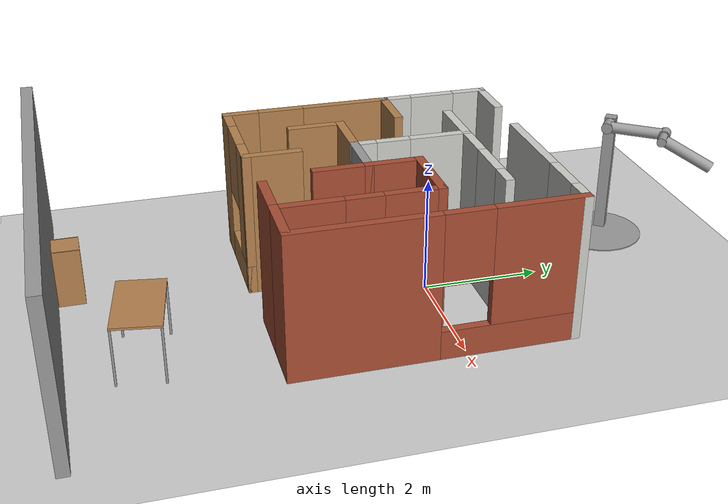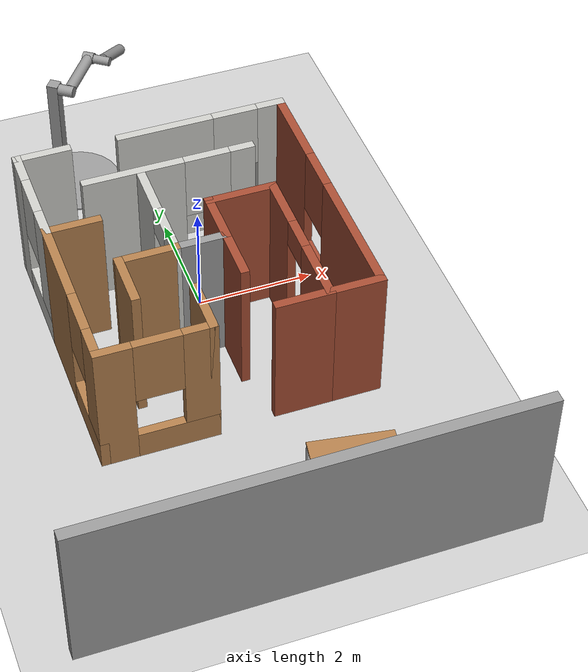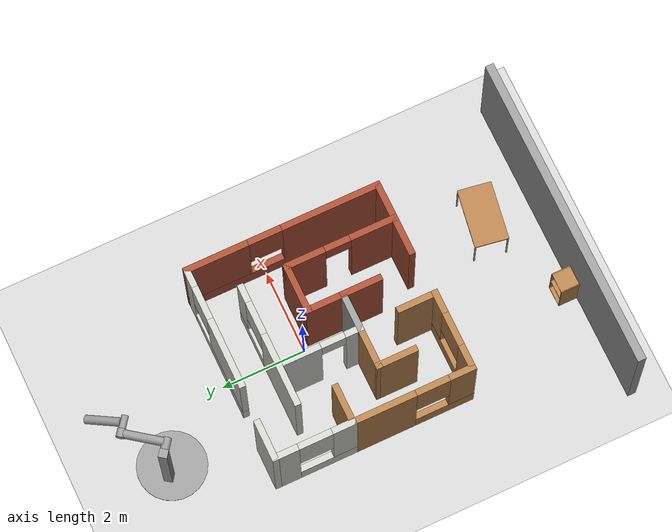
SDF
<sdf version="1.6">
 <world name="default">
  <light name="sun" type="directional">
   <pose>0 0 10 0 -0 0</pose>
   <diffuse>0.8 0.8 0.8 1</diffuse>
   <specular>0.1 0.1 0.1 1</specular>
   <attenuation>
    <range>1000</range>
    <constant>0.9</constant>
    <linear>0.01</linear>
    <quadratic>0.001</quadratic>
   </attenuation>
   <direction>-0.5 0.5 -1</direction>
  </light>
  <model name="ground_plane">
   <static>1</static>
   <link name="link">
    <collision name="collision">
     <geometry><plane><normal>0 0 1</normal><size>100 100</size></plane></geometry>
     <surface><friction><ode><mu>100</mu><mu2>50</mu2></ode></friction></surface>
    </collision>
    <visual name="visual">
     <cast_shadows>0</cast_shadows>
     <geometry><plane><normal>0 0 1</normal><size>100 100</size></plane></geometry>
     <material>
      <script><uri>file://media/materials/scripts/gazebo.material</uri><name>Gazebo/Grey</name></script>
     </material>
    </visual>
   </link>
  </model>
  <gravity>0 0 -9.8</gravity>
  <magnetic_field>6e-06 2.3e-05 -4.2e-05</magnetic_field>
  <atmosphere type="adiabatic"/>
  <physics name="default_physics" default="0" type="ode">
   <max_step_size>0.001</max_step_size>
   <real_time_factor>1</real_time_factor>
   <real_time_update_rate>1000</real_time_update_rate>
  </physics>
  <scene><ambient>0.4 0.4 0.4 1</ambient><background>0.7 0.7 0.7 1</background><shadows>1</shadows></scene>
  <spherical_coordinates>
   <surface_model>EARTH_WGS84</surface_model>
   <latitude_deg>0</latitude_deg>
   <longitude_deg>0</longitude_deg>
   <elevation>0</elevation>
   <heading_deg>0</heading_deg>
  </spherical_coordinates>
  <model name="small_maze">
   <pose>-0.224394 -0.518932 0 0 -0 0</pose>
   <link name="Wall_0">
    <pose>0.021892 1.40552 0 0 -0 0</pose>
    <visual name="Wall_0_Visual_0">
     <pose>-0.618745 0 1.25 0 -0 0</pose>
     <geometry><box><size>1.76251 0.15 2.5</size></box></geometry>
     <material>
      <script><uri>file://media/materials/scripts/gazebo.material</uri><name>Gazebo/CeilingTiled</name></script>
      <ambient>1 1 1 1</ambient>
     </material>
    </visual>
    <collision name="Wall_0_Collision_0">
     <geometry><box><size>1.76251 0.15 2.5</size></box></geometry>
     <pose>-0.618745 0 1.25 0 -0 0</pose>
    </collision>
    <visual name="Wall_0_Visual_1">
     <pose>0.881255 0 0.25 0 -0 0</pose>
     <geometry><box><size>1.23749 0.15 0.5</size></box></geometry>
     <material>
      <script><uri>file://media/materials/scripts/gazebo.material</uri><name>Gazebo/CeilingTiled</name></script>
      <ambient>1 1 1 1</ambient>
     </material>
    </visual>
    <collision name="Wall_0_Collision_1">
     <geometry><box><size>1.23749 0.15 0.5</size></box></geometry>
     <pose>0.881255 0 0.25 0 -0 0</pose>
    </collision>
    <visual name="Wall_0_Visual_2">
     <pose>1.28126 0 1.5 0 -0 0</pose>
     <geometry><box><size>0.43749 0.15 2</size></box></geometry>
     <material>
      <script><uri>file://media/materials/scripts/gazebo.material</uri><name>Gazebo/CeilingTiled</name></script>
      <ambient>1 1 1 1</ambient>
     </material>
    </visual>
    <collision name="Wall_0_Collision_2">
     <geometry><box><size>0.43749 0.15 2</size></box></geometry>
     <pose>1.28126 0 1.5 0 -0 0</pose>
    </collision>
    <visual name="Wall_0_Visual_3">
     <pose>0.66251 0 1.9 0 -0 0</pose>
     <geometry><box><size>0.8 0.15 1.2</size></box></geometry>
     <material>
      <script><uri>file://media/materials/scripts/gazebo.material</uri><name>Gazebo/CeilingTiled</name></script>
      <ambient>1 1 1 1</ambient>
     </material>
    </visual>
    <collision name="Wall_0_Collision_3">
     <geometry><box><size>0.8 0.15 1.2</size></box></geometry>
     <pose>0.66251 0 1.9 0 -0 0</pose>
    </collision>
   </link>
   <link name="Wall_11">
    <collision name="Wall_11_Collision">
     <geometry><box><size>1 0.15 2.5</size></box></geometry>
     <pose>0 0 1.25 0 -0 0</pose>
    </collision>
    <visual name="Wall_11_Visual">
     <pose>0 0 1.25 0 -0 0</pose>
     <geometry><box><size>1 0.15 2.5</size></box></geometry>
     <material>
      <script><uri>file://media/materials/scripts/gazebo.material</uri><name>Gazebo/Wood</name></script>
      <ambient>1 1 1 1</ambient>
     </material>
    </visual>
    <pose>-1.41526 -0.962998 0 0 -0 1.5708</pose>
   </link>
   <link name="Wall_12">
    <collision name="Wall_12_Collision">
     <geometry><box><size>1.08159 0.15 2.5</size></box></geometry>
     <pose>0 0 1.25 0 -0 0</pose>
    </collision>
    <visual name="Wall_12_Visual">
     <pose>0 0 1.25 0 -0 0</pose>
     <geometry><box><size>1.08159 0.15 2.5</size></box></geometry>
     <material>
      <script><uri>file://media/materials/scripts/gazebo.material</uri><name>Gazebo/Wood</name></script>
      <ambient>1 1 1 1</ambient>
     </material>
    </visual>
    <pose>-0.949514 -0.536146 0 0 -0 0.003974</pose>
   </link>
   <link name="Wall_14">
    <pose>-0.480818 0.434933 0 0 0 -1.57384</pose>
    <visual name="Wall_14_Visual_0">
     <pose>-0.509468 0 1.25 0 -0 0</pose>
     <geometry><box><size>1.06953 0.15 2.5</size></box></geometry>
     <material>
      <script><uri>file://media/materials/scripts/gazebo.material</uri><name>Gazebo/CeilingTiled</name></script>
      <ambient>1 1 1 1</ambient>
     </material>
    </visual>
    <collision name="Wall_14_Collision_0">
     <geometry><box><size>1.06953 0.15 2.5</size></box></geometry>
     <pose>-0.509468 0 1.25 0 -0 0</pose>
    </collision>
    <visual name="Wall_14_Visual_1">
     <pose>0.823836 0 1.25 0 -0 0</pose>
     <geometry><box><size>0.440796 0.15 2.5</size></box></geometry>
     <material>
      <script><uri>file://media/materials/scripts/gazebo.material</uri><name>Gazebo/CeilingTiled</name></script>
      <ambient>1 1 1 1</ambient>
     </material>
    </visual>
    <collision name="Wall_14_Collision_1">
     <geometry><box><size>0.440796 0.15 2.5</size></box></geometry>
     <pose>0.823836 0 1.25 0 -0 0</pose>
    </collision>
    <visual name="Wall_14_Visual_2">
     <pose>0.314367 0 2.25 0 -0 0</pose>
     <geometry><box><size>0.578141 0.15 0.5</size></box></geometry>
     <material>
      <script><uri>file://media/materials/scripts/gazebo.material</uri><name>Gazebo/CeilingTiled</name></script>
      <ambient>1 1 1 1</ambient>
     </material>
    </visual>
    <collision name="Wall_14_Collision_2">
     <geometry><box><size>0.578141 0.15 0.5</size></box></geometry>
     <pose>0.314367 0 2.25 0 -0 0</pose>
    </collision>
   </link>
   <link name="Wall_15">
    <collision name="Wall_15_Collision">
     <geometry><box><size>1 0.15 2.5</size></box></geometry>
     <pose>0 0 1.25 0 -0 0</pose>
    </collision>
    <visual name="Wall_15_Visual">
     <pose>0 0 1.25 0 -0 0</pose>
     <geometry><box><size>1 0.15 2.5</size></box></geometry>
     <material>
      <script><uri>file://media/materials/scripts/gazebo.material</uri><name>Gazebo/Grey</name></script>
      <ambient>1 1 1 1</ambient>
     </material>
    </visual>
    <pose>-0.058765 -0.534295 0 0 -0 0</pose>
   </link>
   <link name="Wall_16">
    <collision name="Wall_16_Collision">
     <geometry><box><size>1 0.15 2.5</size></box></geometry>
     <pose>0 0 1.25 0 -0 0</pose>
    </collision>
    <visual name="Wall_16_Visual">
     <pose>0 0 1.25 0 -0 0</pose>
     <geometry><box><size>1 0.15 2.5</size></box></geometry>
     <material>
      <script><uri>file://media/materials/scripts/gazebo.material</uri><name>Gazebo/Bricks</name></script>
      <ambient>1 1 1 1</ambient>
     </material>
    </visual>
    <pose>0.366235 -0.959295 0 0 0 -1.5708</pose>
   </link>
   <link name="Wall_18">
    <collision name="Wall_18_Collision">
     <geometry><box><size>1 0.15 2.5</size></box></geometry>
     <pose>0 0 1.25 0 -0 0</pose>
    </collision>
    <visual name="Wall_18_Visual">
     <pose>0 0 1.25 0 -0 0</pose>
     <geometry><box><size>1 0.15 2.5</size></box></geometry>
     <material>
      <script><uri>file://media/materials/scripts/gazebo.material</uri><name>Gazebo/Bricks</name></script>
      <ambient>1 1 1 1</ambient>
     </material>
    </visual>
    <pose>0.366235 -0.109295 0 0 -0 1.5708</pose>
   </link>
   <link name="Wall_19">
    <collision name="Wall_19_Collision">
     <geometry><box><size>1.25 0.15 2.5</size></box></geometry>
     <pose>0 0 1.25 0 -0 0</pose>
    </collision>
    <visual name="Wall_19_Visual">
     <pose>0 0 1.25 0 -0 0</pose>
     <geometry><box><size>1.25 0.15 2.5</size></box></geometry>
     <material>
      <script><uri>file://media/materials/scripts/gazebo.material</uri><name>Gazebo/Bricks</name></script>
      <ambient>1 1 1 1</ambient>
     </material>
    </visual>
    <pose>0.916235 0.315705 0 0 -0 0</pose>
   </link>
   <link name="Wall_2">
    <collision name="Wall_2_Collision">
     <geometry><box><size>1 0.15 2.5</size></box></geometry>
     <pose>0 0 1.25 0 -0 0</pose>
    </collision>
    <visual name="Wall_2_Visual">
     <pose>0 0 1.25 0 -0 0</pose>
     <geometry><box><size>1 0.15 2.5</size></box></geometry>
     <material>
      <script><uri>file://media/materials/scripts/gazebo.material</uri><name>Gazebo/CeilingTiled</name></script>
      <ambient>1 1 1 1</ambient>
     </material>
    </visual>
    <pose>-1.89123 2.35 0 0 -0 3.14159</pose>
   </link>
   <link name="Wall_20">
    <pose>1.46623 -0.984295 0 0 0 -1.5708</pose>
    <visual name="Wall_20_Visual_0">
     <pose>-0.881212 0 1.25 0 -0 0</pose>
     <geometry><box><size>0.987576 0.15 2.5</size></box></geometry>
     <material>
      <script><uri>file://media/materials/scripts/gazebo.material</uri><name>Gazebo/Bricks</name></script>
      <ambient>1 1 1 1</ambient>
     </material>
    </visual>
    <collision name="Wall_20_Collision_0">
     <geometry><box><size>0.987576 0.15 2.5</size></box></geometry>
     <pose>-0.881212 0 1.25 0 -0 0</pose>
    </collision>
    <visual name="Wall_20_Visual_1">
     <pose>0.800038 0 1.25 0 -0 0</pose>
     <geometry><box><size>1.14992 0.15 2.5</size></box></geometry>
     <material>
      <script><uri>file://media/materials/scripts/gazebo.material</uri><name>Gazebo/Bricks</name></script>
      <ambient>1 1 1 1</ambient>
     </material>
    </visual>
    <collision name="Wall_20_Collision_1">
     <geometry><box><size>1.14992 0.15 2.5</size></box></geometry>
     <pose>0.800038 0 1.25 0 -0 0</pose>
    </collision>
    <visual name="Wall_20_Visual_2">
     <pose>-0.081174 0 2.25 0 -0 0</pose>
     <geometry><box><size>0.6125 0.15 0.5</size></box></geometry>
     <material>
      <script><uri>file://media/materials/scripts/gazebo.material</uri><name>Gazebo/Bricks</name></script>
      <ambient>1 1 1 1</ambient>
     </material>
    </visual>
    <collision name="Wall_20_Collision_2">
     <geometry><box><size>0.6125 0.15 0.5</size></box></geometry>
     <pose>-0.081174 0 2.25 0 -0 0</pose>
    </collision>
   </link>
   <link name="Wall_22">
    <collision name="Wall_22_Collision">
     <geometry><box><size>1 0.15 2.5</size></box></geometry>
     <pose>0 0 1.25 0 -0 0</pose>
    </collision>
    <visual name="Wall_22_Visual">
     <pose>0 0 1.25 0 -0 0</pose>
     <geometry><box><size>1 0.15 2.5</size></box></geometry>
     <material>
      <script><uri>file://media/materials/scripts/gazebo.material</uri><name>Gazebo/Bricks</name></script>
      <ambient>1 1 1 1</ambient>
     </material>
    </visual>
    <pose>1.04123 -2.2843 0 0 -0 3.14159</pose>
   </link>
   <link name="Wall_24">
    <collision name="Wall_24_Collision">
     <geometry><box><size>1 0.15 2.5</size></box></geometry>
     <pose>0 0 1.25 0 -0 0</pose>
    </collision>
    <visual name="Wall_24_Visual">
     <pose>0 0 1.25 0 -0 0</pose>
     <geometry><box><size>1 0.15 2.5</size></box></geometry>
     <material>
      <script><uri>file://media/materials/scripts/gazebo.material</uri><name>Gazebo/Bricks</name></script>
      <ambient>1 1 1 1</ambient>
     </material>
    </visual>
    <pose>1.89123 -2.2843 0 0 -0 0</pose>
   </link>
   <link name="Wall_25">
    <pose>2.31623 0.015705 0 0 -0 1.5708</pose>
    <visual name="Wall_25_Visual_0">
     <pose>-1.16841 0 1.25 0 -0 0</pose>
     <geometry><box><size>2.41317 0.15 2.5</size></box></geometry>
     <material>
      <script><uri>file://media/materials/scripts/gazebo.material</uri><name>Gazebo/Bricks</name></script>
      <ambient>1 1 1 1</ambient>
     </material>
    </visual>
    <collision name="Wall_25_Collision_0">
     <geometry><box><size>2.41317 0.15 2.5</size></box></geometry>
     <pose>-1.16841 0 1.25 0 -0 0</pose>
    </collision>
    <visual name="Wall_25_Visual_1">
     <pose>1.20659 0 0.25 0 -0 0</pose>
     <geometry><box><size>2.33683 0.15 0.5</size></box></geometry>
     <material>
      <script><uri>file://media/materials/scripts/gazebo.material</uri><name>Gazebo/Bricks</name></script>
      <ambient>1 1 1 1</ambient>
     </material>
    </visual>
    <collision name="Wall_25_Collision_1">
     <geometry><box><size>2.33683 0.15 0.5</size></box></geometry>
     <pose>1.20659 0 0.25 0 -0 0</pose>
    </collision>
    <visual name="Wall_25_Visual_2">
     <pose>1.60659 0 1.5 0 -0 0</pose>
     <geometry><box><size>1.53683 0.15 2</size></box></geometry>
     <material>
      <script><uri>file://media/materials/scripts/gazebo.material</uri><name>Gazebo/Bricks</name></script>
      <ambient>1 1 1 1</ambient>
     </material>
    </visual>
    <collision name="Wall_25_Collision_2">
     <geometry><box><size>1.53683 0.15 2</size></box></geometry>
     <pose>1.60659 0 1.5 0 -0 0</pose>
    </collision>
    <visual name="Wall_25_Visual_3">
     <pose>0.438174 0 1.9 0 -0 0</pose>
     <geometry><box><size>0.8 0.15 1.2</size></box></geometry>
     <material>
      <script><uri>file://media/materials/scripts/gazebo.material</uri><name>Gazebo/Bricks</name></script>
      <ambient>1 1 1 1</ambient>
     </material>
    </visual>
    <collision name="Wall_25_Collision_3">
     <geometry><box><size>0.8 0.15 1.2</size></box></geometry>
     <pose>0.438174 0 1.9 0 -0 0</pose>
    </collision>
   </link>
   <link name="Wall_26">
    <pose>0.891235 2.3157 0 0 -0 3.14159</pose>
    <visual name="Wall_26_Visual_0">
     <pose>-1.24908 0 1.25 0 -0 0</pose>
     <geometry><box><size>0.501833 0.15 2.5</size></box></geometry>
     <material>
      <script><uri>file://media/materials/scripts/gazebo.material</uri><name>Gazebo/CeilingTiled</name></script>
      <ambient>1 1 1 1</ambient>
     </material>
    </visual>
    <collision name="Wall_26_Collision_0">
     <geometry><box><size>0.501833 0.15 2.5</size></box></geometry>
     <pose>-1.24908 0 1.25 0 -0 0</pose>
    </collision>
    <visual name="Wall_26_Visual_1">
     <pose>0.250916 0 0.25 0 -0 0</pose>
     <geometry><box><size>2.49817 0.15 0.5</size></box></geometry>
     <material>
      <script><uri>file://media/materials/scripts/gazebo.material</uri><name>Gazebo/CeilingTiled</name></script>
      <ambient>1 1 1 1</ambient>
     </material>
    </visual>
    <collision name="Wall_26_Collision_1">
     <geometry><box><size>2.49817 0.15 0.5</size></box></geometry>
     <pose>0.250916 0 0.25 0 -0 0</pose>
    </collision>
    <visual name="Wall_26_Visual_2">
     <pose>0.650916 0 1.5 0 -0 0</pose>
     <geometry><box><size>1.69817 0.15 2</size></box></geometry>
     <material>
      <script><uri>file://media/materials/scripts/gazebo.material</uri><name>Gazebo/CeilingTiled</name></script>
      <ambient>1 1 1 1</ambient>
     </material>
    </visual>
    <collision name="Wall_26_Collision_2">
     <geometry><box><size>1.69817 0.15 2</size></box></geometry>
     <pose>0.650916 0 1.5 0 -0 0</pose>
    </collision>
    <visual name="Wall_26_Visual_3">
     <pose>-0.598167 0 1.9 0 -0 0</pose>
     <geometry><box><size>0.8 0.15 1.2</size></box></geometry>
     <material>
      <script><uri>file://media/materials/scripts/gazebo.material</uri><name>Gazebo/CeilingTiled</name></script>
      <ambient>1 1 1 1</ambient>
     </material>
    </visual>
    <collision name="Wall_26_Collision_3">
     <geometry><box><size>0.8 0.15 1.2</size></box></geometry>
     <pose>-0.598167 0 1.9 0 -0 0</pose>
    </collision>
   </link>
   <link name="Wall_3">
    <pose>-2.31623 1.425 0 0 0 -1.5708</pose>
    <visual name="Wall_3_Visual_0">
     <pose>-0.685939 0 1.25 0 -0 0</pose>
     <geometry><box><size>0.628121 0.15 2.5</size></box></geometry>
     <material>
      <script><uri>file://media/materials/scripts/gazebo.material</uri><name>Gazebo/CeilingTiled</name></script>
      <ambient>1 1 1 1</ambient>
     </material>
    </visual>
    <collision name="Wall_3_Collision_0">
     <geometry><box><size>0.628121 0.15 2.5</size></box></geometry>
     <pose>-0.685939 0 1.25 0 -0 0</pose>
    </collision>
    <visual name="Wall_3_Visual_1">
     <pose>0.314061 0 0.25 0 -0 0</pose>
     <geometry><box><size>1.37188 0.15 0.5</size></box></geometry>
     <material>
      <script><uri>file://media/materials/scripts/gazebo.material</uri><name>Gazebo/CeilingTiled</name></script>
      <ambient>1 1 1 1</ambient>
     </material>
    </visual>
    <collision name="Wall_3_Collision_1">
     <geometry><box><size>1.37188 0.15 0.5</size></box></geometry>
     <pose>0.314061 0 0.25 0 -0 0</pose>
    </collision>
    <visual name="Wall_3_Visual_2">
     <pose>0.714061 0 1.5 0 -0 0</pose>
     <geometry><box><size>0.571879 0.15 2</size></box></geometry>
     <material>
      <script><uri>file://media/materials/scripts/gazebo.material</uri><name>Gazebo/CeilingTiled</name></script>
      <ambient>1 1 1 1</ambient>
     </material>
    </visual>
    <collision name="Wall_3_Collision_2">
     <geometry><box><size>0.571879 0.15 2</size></box></geometry>
     <pose>0.714061 0 1.5 0 -0 0</pose>
    </collision>
    <visual name="Wall_3_Visual_3">
     <pose>0.028121 0 1.9 0 -0 0</pose>
     <geometry><box><size>0.8 0.15 1.2</size></box></geometry>
     <material>
      <script><uri>file://media/materials/scripts/gazebo.material</uri><name>Gazebo/CeilingTiled</name></script>
      <ambient>1 1 1 1</ambient>
     </material>
    </visual>
    <collision name="Wall_3_Collision_3">
     <geometry><box><size>0.8 0.15 1.2</size></box></geometry>
     <pose>0.028121 0 1.9 0 -0 0</pose>
    </collision>
   </link>
   <link name="Wall_4">
    <collision name="Wall_4_Collision">
     <geometry><box><size>1 0.15 2.5</size></box></geometry>
     <pose>0 0 1.25 0 -0 0</pose>
    </collision>
    <visual name="Wall_4_Visual">
     <pose>0 0 1.25 0 -0 0</pose>
     <geometry><box><size>1 0.15 2.5</size></box></geometry>
     <material>
      <script><uri>file://media/materials/scripts/gazebo.material</uri><name>Gazebo/Wood</name></script>
      <ambient>1 1 1 1</ambient>
     </material>
    </visual>
    <pose>-1.89123 0.5 0 0 -0 0</pose>
   </link>
   <link name="Wall_6">
    <pose>-2.31623 -0.925 0 0 0 -1.5708</pose>
    <visual name="Wall_6_Visual_0">
     <pose>-0.713689 0 1.25 0 -0 0</pose>
     <geometry><box><size>1.57262 0.15 2.5</size></box></geometry>
     <material>
      <script><uri>file://media/materials/scripts/gazebo.material</uri><name>Gazebo/Wood</name></script>
      <ambient>1 1 1 1</ambient>
     </material>
    </visual>
    <collision name="Wall_6_Collision_0">
     <geometry><box><size>1.57262 0.15 2.5</size></box></geometry>
     <pose>-0.713689 0 1.25 0 -0 0</pose>
    </collision>
    <visual name="Wall_6_Visual_1">
     <pose>0.786311 0 0.25 0 -0 0</pose>
     <geometry><box><size>1.42738 0.15 0.5</size></box></geometry>
     <material>
      <script><uri>file://media/materials/scripts/gazebo.material</uri><name>Gazebo/Wood</name></script>
      <ambient>1 1 1 1</ambient>
     </material>
    </visual>
    <collision name="Wall_6_Collision_1">
     <geometry><box><size>1.42738 0.15 0.5</size></box></geometry>
     <pose>0.786311 0 0.25 0 -0 0</pose>
    </collision>
    <visual name="Wall_6_Visual_2">
     <pose>1.18631 0 1.5 0 -0 0</pose>
     <geometry><box><size>0.627379 0.15 2</size></box></geometry>
     <material>
      <script><uri>file://media/materials/scripts/gazebo.material</uri><name>Gazebo/Wood</name></script>
      <ambient>1 1 1 1</ambient>
     </material>
    </visual>
    <collision name="Wall_6_Collision_2">
     <geometry><box><size>0.627379 0.15 2</size></box></geometry>
     <pose>1.18631 0 1.5 0 -0 0</pose>
    </collision>
    <visual name="Wall_6_Visual_3">
     <pose>0.472621 0 1.9 0 -0 0</pose>
     <geometry><box><size>0.8 0.15 1.2</size></box></geometry>
     <material>
      <script><uri>file://media/materials/scripts/gazebo.material</uri><name>Gazebo/Wood</name></script>
      <ambient>1 1 1 1</ambient>
     </material>
    </visual>
    <collision name="Wall_6_Collision_3">
     <geometry><box><size>0.8 0.15 1.2</size></box></geometry>
     <pose>0.472621 0 1.9 0 -0 0</pose>
    </collision>
   </link>
   <link name="Wall_8">
    <pose>-1.39123 -2.35 0 0 -0 0</pose>
    <visual name="Wall_8_Visual_0">
     <pose>-0.685682 0 1.25 0 -0 0</pose>
     <geometry><box><size>0.628636 0.15 2.5</size></box></geometry>
     <material>
      <script><uri>file://media/materials/scripts/gazebo.material</uri><name>Gazebo/Wood</name></script>
      <ambient>1 1 1 1</ambient>
     </material>
    </visual>
    <collision name="Wall_8_Collision_0">
     <geometry><box><size>0.628636 0.15 2.5</size></box></geometry>
     <pose>-0.685682 0 1.25 0 -0 0</pose>
    </collision>
    <visual name="Wall_8_Visual_1">
     <pose>0.314318 0 0.25 0 -0 0</pose>
     <geometry><box><size>1.37136 0.15 0.5</size></box></geometry>
     <material>
      <script><uri>file://media/materials/scripts/gazebo.material</uri><name>Gazebo/Wood</name></script>
      <ambient>1 1 1 1</ambient>
     </material>
    </visual>
    <collision name="Wall_8_Collision_1">
     <geometry><box><size>1.37136 0.15 0.5</size></box></geometry>
     <pose>0.314318 0 0.25 0 -0 0</pose>
    </collision>
    <visual name="Wall_8_Visual_2">
     <pose>0.714318 0 1.5 0 -0 0</pose>
     <geometry><box><size>0.571364 0.15 2</size></box></geometry>
     <material>
      <script><uri>file://media/materials/scripts/gazebo.material</uri><name>Gazebo/Wood</name></script>
      <ambient>1 1 1 1</ambient>
     </material>
    </visual>
    <collision name="Wall_8_Collision_2">
     <geometry><box><size>0.571364 0.15 2</size></box></geometry>
     <pose>0.714318 0 1.5 0 -0 0</pose>
    </collision>
    <visual name="Wall_8_Visual_3">
     <pose>0.028636 0 1.9 0 -0 0</pose>
     <geometry><box><size>0.8 0.15 1.2</size></box></geometry>
     <material>
      <script><uri>file://media/materials/scripts/gazebo.material</uri><name>Gazebo/Wood</name></script>
      <ambient>1 1 1 1</ambient>
     </material>
    </visual>
    <collision name="Wall_8_Collision_3">
     <geometry><box><size>0.8 0.15 1.2</size></box></geometry>
     <pose>0.028636 0 1.9 0 -0 0</pose>
    </collision>
   </link>
   <link name="Wall_9">
    <collision name="Wall_9_Collision">
     <geometry><box><size>1 0.15 2.5</size></box></geometry>
     <pose>0 0 1.25 0 -0 0</pose>
    </collision>
    <visual name="Wall_9_Visual">
     <pose>0 0 1.25 0 -0 0</pose>
     <geometry><box><size>1 0.15 2.5</size></box></geometry>
     <material>
      <script><uri>file://media/materials/scripts/gazebo.material</uri><name>Gazebo/Wood</name></script>
      <ambient>1 1 1 1</ambient>
     </material>
    </visual>
    <pose>-0.466234 -1.925 0 0 -0 1.5708</pose>
   </link>
   <static>1</static>
  </model>
  <model name="table">
   <static>0</static>
   <link name="link">
    <collision name="surface">
     <pose>0 0 1 0 -0 0</pose>
     <geometry><box><size>1.5 0.8 0.03</size></box></geometry>
     <surface><friction><ode><mu>0.6</mu><mu2>0.6</mu2></ode></friction></surface>
    </collision>
    <visual name="visual1">
     <pose>0 0 1 0 -0 0</pose>
     <geometry><box><size>1.4 0.8 0.04</size></box></geometry>
     <material>
      <script><uri>file://media/materials/scripts/gazebo.material</uri><name>Gazebo/Wood</name></script>
     </material>
    </visual>
    <collision name="front_left_leg">
     <pose>0.68 0.38 0.5 0 -0 0</pose>
     <geometry><cylinder><radius>0.02</radius><length>1</length></cylinder></geometry>
    </collision>
    <visual name="front_left_leg">
     <pose>0.68 0.38 0.5 0 -0 0</pose>
     <geometry><cylinder><radius>0.02</radius><length>1</length></cylinder></geometry>
     <material>
      <script><uri>file://media/materials/scripts/gazebo.material</uri><name>Gazebo/Grey</name></script>
     </material>
    </visual>
    <collision name="front_right_leg">
     <pose>0.68 -0.38 0.5 0 -0 0</pose>
     <geometry><cylinder><radius>0.02</radius><length>1</length></cylinder></geometry>
    </collision>
    <visual name="front_right_leg">
     <pose>0.68 -0.38 0.5 0 -0 0</pose>
     <geometry><cylinder><radius>0.02</radius><length>1</length></cylinder></geometry>
     <material>
      <script><uri>file://media/materials/scripts/gazebo.material</uri><name>Gazebo/Grey</name></script>
     </material>
    </visual>
    <collision name="back_right_leg">
     <pose>-0.68 -0.38 0.5 0 -0 0</pose>
     <geometry><cylinder><radius>0.02</radius><length>1</length></cylinder></geometry>
    </collision>
    <visual name="back_right_leg">
     <pose>-0.68 -0.38 0.5 0 -0 0</pose>
     <geometry><cylinder><radius>0.02</radius><length>1</length></cylinder></geometry>
     <material>
      <script><uri>file://media/materials/scripts/gazebo.material</uri><name>Gazebo/Grey</name></script>
     </material>
    </visual>
    <collision name="back_left_leg">
     <pose>-0.68 0.38 0.5 0 -0 0</pose>
     <geometry><cylinder><radius>0.02</radius><length>1</length></cylinder></geometry>
    </collision>
    <visual name="back_left_leg">
     <pose>-0.68 0.38 0.5 0 -0 0</pose>
     <geometry><cylinder><radius>0.02</radius><length>1</length></cylinder></geometry>
     <material>
      <script><uri>file://media/materials/scripts/gazebo.material</uri><name>Gazebo/Grey</name></script>
     </material>
    </visual>
    <inertial>
     <inertia><ixx>1</ixx><ixy>0</ixy><ixz>0</ixz><iyy>1</iyy><iyz>0</iyz><izz>1</izz></inertia>
     <mass>1</mass>
    </inertial>
   </link>
   <pose>0.911004 -4.86173 -0.010577 -0.000857 -0.002271 -0.159795</pose>
  </model>
  <model name="double_pendulum_with_base">
   <link name="base">
    <inertial>
     <mass>100</mass>
     <inertia><ixx>1</ixx><ixy>0</ixy><ixz>0</ixz><iyy>1</iyy><iyz>0</iyz><izz>1</izz></inertia>
    </inertial>
    <visual name="vis_plate_on_ground">
     <pose>0 0 0.01 0 -0 0</pose>
     <geometry><cylinder><radius>0.8</radius><length>0.02</length></cylinder></geometry>
     <material>
      <script><uri>file://media/materials/scripts/gazebo.material</uri><name>Gazebo/Grey</name></script>
     </material>
    </visual>
    <visual name="vis_pole">
     <pose>-0.275 0 1.1 0 -0 0</pose>
     <geometry><box><size>0.2 0.2 2.2</size></box></geometry>
     <material>
      <script><uri>file://media/materials/scripts/gazebo.material</uri><name>Gazebo/Grey</name></script>
     </material>
    </visual>
    <collision name="col_plate_on_ground">
     <pose>0 0 0.01 0 -0 0</pose>
     <geometry><cylinder><radius>0.8</radius><length>0.02</length></cylinder></geometry>
    </collision>
    <collision name="col_pole">
     <pose>-0.275 0 1.1 0 -0 0</pose>
     <geometry><box><size>0.2 0.2 2.2</size></box></geometry>
    </collision>
   </link>
   <link name="upper_link">
    <pose>0 0 2.1 -1.5708 0 0</pose>
    <inertial>
     <pose>0 0 0.5 0 -0 0</pose>
     <inertia><ixx>1</ixx><ixy>0</ixy><ixz>0</ixz><iyy>1</iyy><iyz>0</iyz><izz>1</izz></inertia>
     <mass>1</mass>
    </inertial>
    <visual name="vis_upper_joint">
     <pose>-0.05 0 0 3.14159 1.57079 3.14159</pose>
     <geometry><cylinder><radius>0.1</radius><length>0.3</length></cylinder></geometry>
     <material>
      <script><uri>file://media/materials/scripts/gazebo.material</uri><name>Gazebo/Grey</name></script>
     </material>
    </visual>
    <visual name="vis_lower_joint">
     <pose>0 0 1 3.14159 1.57079 3.14159</pose>
     <geometry><cylinder><radius>0.1</radius><length>0.2</length></cylinder></geometry>
     <material>
      <script><uri>file://media/materials/scripts/gazebo.material</uri><name>Gazebo/Grey</name></script>
     </material>
    </visual>
    <visual name="vis_cylinder">
     <pose>0 0 0.5 0 -0 0</pose>
     <geometry><cylinder><radius>0.1</radius><length>0.9</length></cylinder></geometry>
     <material>
      <script><uri>file://media/materials/scripts/gazebo.material</uri><name>Gazebo/Grey</name></script>
     </material>
    </visual>
    <collision name="col_upper_joint">
     <pose>-0.05 0 0 3.14159 1.57079 3.14159</pose>
     <geometry><cylinder><radius>0.1</radius><length>0.3</length></cylinder></geometry>
    </collision>
    <collision name="col_lower_joint">
     <pose>0 0 1 3.14159 1.57079 3.14159</pose>
     <geometry><cylinder><radius>0.1</radius><length>0.2</length></cylinder></geometry>
    </collision>
    <collision name="col_cylinder">
     <pose>0 0 0.5 0 -0 0</pose>
     <geometry><cylinder><radius>0.1</radius><length>0.9</length></cylinder></geometry>
    </collision>
   </link>
   <link name="lower_link">
    <pose>0.25 1 2.1 -2 0 0</pose>
    <inertial>
     <pose>0 0 0.5 0 -0 0</pose>
     <inertia><ixx>1</ixx><ixy>0</ixy><ixz>0</ixz><iyy>1</iyy><iyz>0</iyz><izz>1</izz></inertia>
     <mass>1</mass>
    </inertial>
    <visual name="vis_lower_joint">
     <pose>0 0 0 3.14159 1.57079 3.14159</pose>
     <geometry><cylinder><radius>0.08</radius><length>0.3</length></cylinder></geometry>
     <material>
      <script><uri>file://media/materials/scripts/gazebo.material</uri><name>Gazebo/Grey</name></script>
     </material>
    </visual>
    <visual name="vis_cylinder">
     <pose>0 0 0.5 0 -0 0</pose>
     <geometry><cylinder><radius>0.1</radius><length>0.9</length></cylinder></geometry>
     <material>
      <script><uri>file://media/materials/scripts/gazebo.material</uri><name>Gazebo/Grey</name></script>
     </material>
    </visual>
    <collision name="col_lower_joint">
     <pose>0 0 0 3.14159 1.57079 3.14159</pose>
     <geometry><cylinder><radius>0.08</radius><length>0.3</length></cylinder></geometry>
    </collision>
    <collision name="col_cylinder">
     <pose>0 0 0.5 0 -0 0</pose>
     <geometry><cylinder><radius>0.1</radius><length>0.9</length></cylinder></geometry>
    </collision>
   </link>
   <joint name="upper_joint" type="revolute">
    <parent>base</parent>
    <child>upper_link</child>
    <axis>
     <xyz>1 0 0</xyz>
     <use_parent_model_frame>1</use_parent_model_frame>
     <limit><lower>-1e+16</lower><upper>1e+16</upper></limit>
     <dynamics><spring_reference>0</spring_reference><spring_stiffness>0</spring_stiffness></dynamics>
    </axis>
   </joint>
   <joint name="lower_joint" type="revolute">
    <parent>upper_link</parent>
    <child>lower_link</child>
    <axis>
     <xyz>1 0 0</xyz>
     <use_parent_model_frame>1</use_parent_model_frame>
     <limit><lower>-1e+16</lower><upper>1e+16</upper></limit>
     <dynamics><spring_reference>0</spring_reference><spring_stiffness>0</spring_stiffness></dynamics>
    </axis>
   </joint>
   <pose>-1.14195 3.76044 -9e-06 -2e-06 -1.6e-05 -0.639814</pose>
  </model>
  <model name="grey_wall">
   <static>1</static>
   <link name="link">
    <pose>0 0 1.4 0 -0 0</pose>
    <collision name="collision"><geometry><box><size>7.5 0.2 2.8</size></box></geometry></collision>
    <visual name="visual">
     <cast_shadows>0</cast_shadows>
     <geometry><box><size>7.5 0.2 2.8</size></box></geometry>
     <material>
      <script>
       <uri>model://grey_wall/materials/scripts</uri>
       <uri>model://grey_wall/materials/textures</uri>
       <name>vrc/grey_wall</name>
      </script>
     </material>
    </visual>
   </link>
   <pose>-0.27835 -6.18591 0 0 -0 0</pose>
  </model>
  <model name="cabinet">
   <static>1</static>
   <link name="cabinet_bottom_plate">
    <inertial>
     <pose>0 0 -1 0 -0 0</pose>
     <inertia><ixx>2.05</ixx><ixy>0</ixy><ixz>0</ixz><iyy>2.05</iyy><iyz>0</iyz><izz>2.05</izz></inertia>
     <mass>25</mass>
    </inertial>
    <collision name="cabinet_bottom_plate_geom">
     <pose>0 0 0.01 0 -0 0</pose>
     <geometry><box><size>0.45 0.45 0.02</size></box></geometry>
    </collision>
    <visual name="cabinet_bottom_plate_geom_visual">
     <pose>0 0 0.01 0 -0 0</pose>
     <geometry><box><size>0.45 0.45 0.02</size></box></geometry>
     <material>
      <script><uri>file://media/materials/scripts/gazebo.material</uri><name>Gazebo/Wood</name></script>
     </material>
    </visual>
    <collision name="cabinet_bottom_plate_geom_cabinet_back_plate">
     <pose>0.235 0 0.51 0 -0 0</pose>
     <geometry><box><size>0.02 0.45 1.02</size></box></geometry>
    </collision>
    <visual name="cabinet_bottom_plate_geom_cabinet_back_plate_visual">
     <pose>0.235 0 0.51 0 -0 0</pose>
     <geometry><box><size>0.02 0.45 1.02</size></box></geometry>
     <material>
      <script><uri>file://media/materials/scripts/gazebo.material</uri><name>Gazebo/Wood</name></script>
     </material>
    </visual>
    <collision name="cabinet_bottom_plate_geom_cabinet_left_plate">
     <pose>0 0.235 0.51 0 -0 0</pose>
     <geometry><box><size>0.45 0.02 1.02</size></box></geometry>
    </collision>
    <visual name="cabinet_bottom_plate_geom_cabinet_left_plate_visual">
     <pose>0 0.235 0.51 0 -0 0</pose>
     <geometry><box><size>0.45 0.02 1.02</size></box></geometry>
     <material>
      <script><uri>file://media/materials/scripts/gazebo.material</uri><name>Gazebo/Wood</name></script>
     </material>
    </visual>
    <collision name="cabinet_bottom_plate_geom_cabinet_middle_plate">
     <pose>0 0 0.51 0 -0 0</pose>
     <geometry><box><size>0.45 0.45 0.02</size></box></geometry>
    </collision>
    <visual name="cabinet_bottom_plate_geom_cabinet_middle_plate_visual">
     <pose>0 0 0.51 0 -0 0</pose>
     <geometry><box><size>0.45 0.45 0.02</size></box></geometry>
     <material>
      <script><uri>file://media/materials/scripts/gazebo.material</uri><name>Gazebo/Wood</name></script>
     </material>
    </visual>
    <collision name="cabinet_bottom_plate_geom_cabinet_right_plate">
     <pose>0 -0.235 0.51 0 -0 0</pose>
     <geometry><box><size>0.45 0.02 1.02</size></box></geometry>
    </collision>
    <visual name="cabinet_bottom_plate_geom_cabinet_right_plate_visual">
     <pose>0 -0.235 0.51 0 -0 0</pose>
     <geometry><box><size>0.45 0.02 1.02</size></box></geometry>
     <material>
      <script><uri>file://media/materials/scripts/gazebo.material</uri><name>Gazebo/Wood</name></script>
     </material>
    </visual>
    <collision name="cabinet_bottom_plate_geom_cabinet_top_plate">
     <pose>0 0 1.01 0 -0 0</pose>
     <geometry><box><size>0.45 0.45 0.02</size></box></geometry>
    </collision>
    <visual name="cabinet_bottom_plate_geom_cabinet_top_plate_visual">
     <pose>0 0 1.01 0 -0 0</pose>
     <geometry><box><size>0.45 0.45 0.02</size></box></geometry>
     <material>
      <script><uri>file://media/materials/scripts/gazebo.material</uri><name>Gazebo/Wood</name></script>
     </material>
    </visual>
   </link>
   <pose>-1.24447 -5.85406 0 0 0 -1.5708</pose>
  </model>
 </world>
</sdf>
